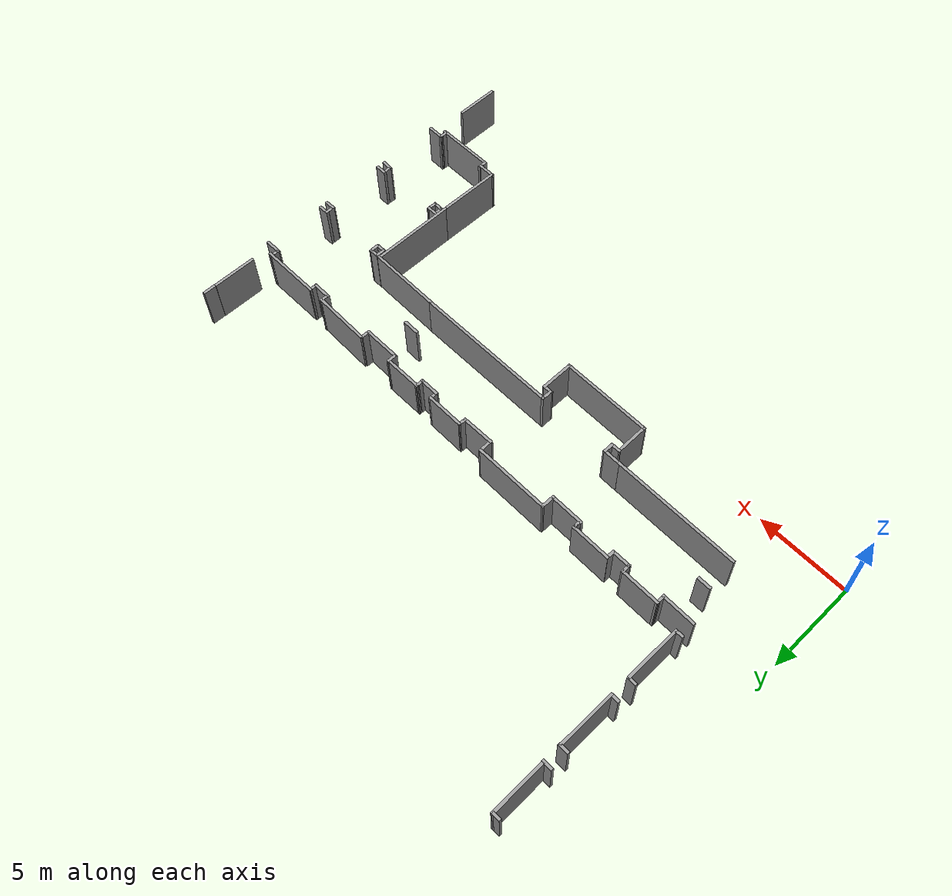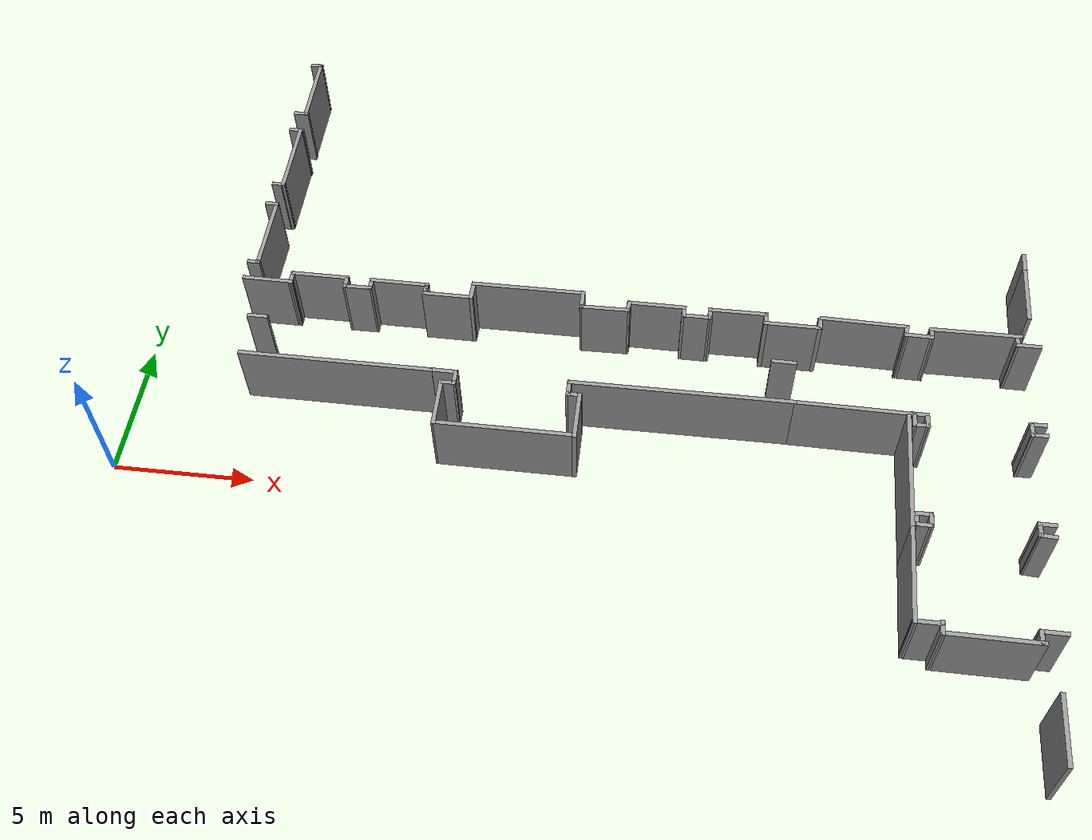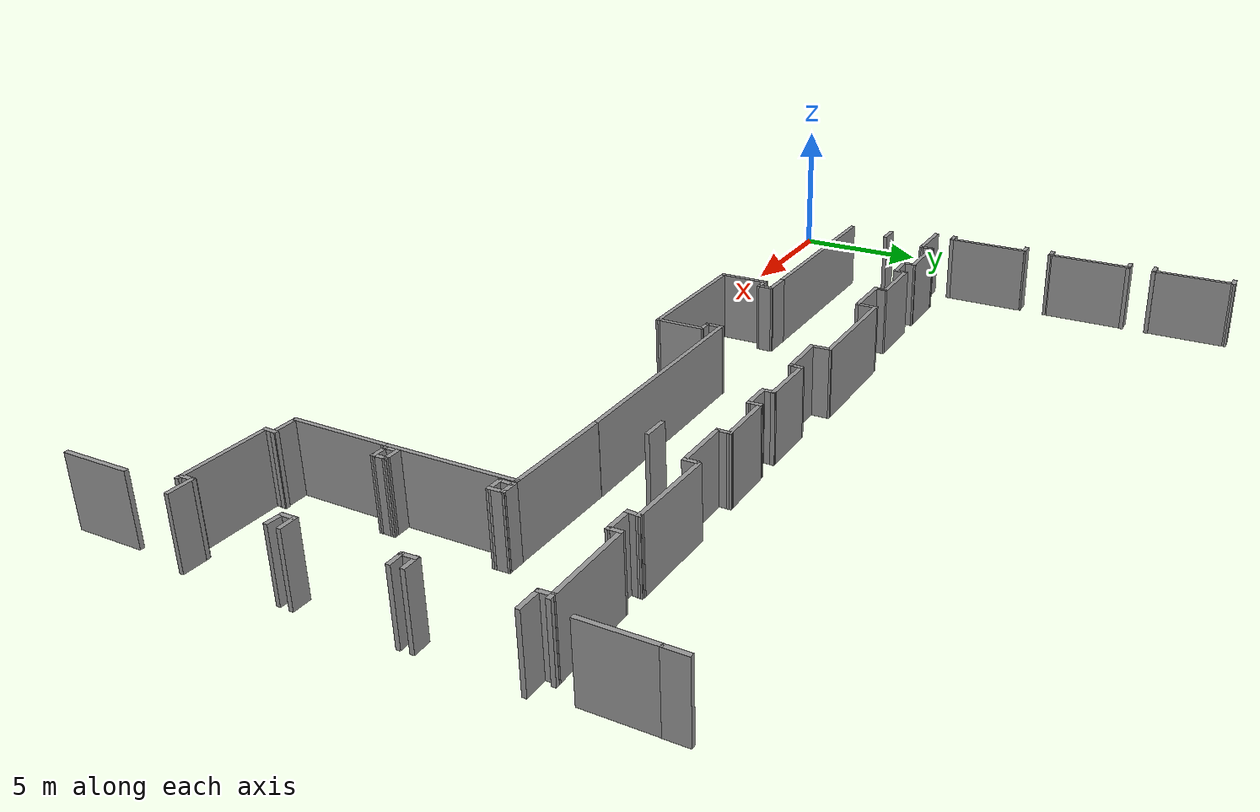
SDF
<sdf version="1.7">
 <model name="TD1-Mapa">
  <pose>-6.249136 -5.50363 0 0 -0 0</pose>
  <link name="Wall_470">
   <collision name="Wall_470_Collision">
    <geometry><box><size>1.855538 0.15 2.5</size></box></geometry>
    <pose>0 0 1.25 0 -0 0</pose>
   </collision>
   <visual name="Wall_470_Visual">
    <pose>0 0 1.25 0 -0 0</pose>
    <geometry><box><size>1.855538 0.15 2.5</size></box></geometry>
    <material>
     <script><uri>file://media/materials/scripts/gazebo.material</uri><name>Gazebo/Grey</name></script>
     <ambient>1 1 1 1</ambient>
    </material>
    <meta><layer>0</layer></meta>
   </visual>
   <pose>10.45343 12.54383 0 0 -0 -0.0081393</pose>
  </link>
  <link name="Wall_471">
   <collision name="Wall_471_Collision">
    <geometry><box><size>0.555431 0.15 2.5</size></box></geometry>
    <pose>0 0 1.25 0 -0 0</pose>
   </collision>
   <visual name="Wall_471_Visual">
    <pose>0 0 1.25 0 -0 0</pose>
    <geometry><box><size>0.555431 0.15 2.5</size></box></geometry>
    <material>
     <script><uri>file://media/materials/scripts/gazebo.material</uri><name>Gazebo/Grey</name></script>
     <ambient>1 1 1 1</ambient>
    </material>
    <meta><layer>0</layer></meta>
   </visual>
   <pose>11.30613 12.73963 0 0 -0 1.57083</pose>
  </link>
  <link name="Wall_472">
   <collision name="Wall_472_Collision">
    <geometry><box><size>2.154231 0.15 2.5</size></box></geometry>
    <pose>0 0 1.25 0 -0 0</pose>
   </collision>
   <visual name="Wall_472_Visual">
    <pose>0 0 1.25 0 -0 0</pose>
    <geometry><box><size>2.154231 0.15 2.5</size></box></geometry>
    <material>
     <script><uri>file://media/materials/scripts/gazebo.material</uri><name>Gazebo/Grey</name></script>
     <ambient>1 1 1 1</ambient>
    </material>
    <meta><layer>0</layer></meta>
   </visual>
   <pose>12.30823 12.94013 0 0 -0 -0.0021343</pose>
  </link>
  <link name="Wall_475">
   <collision name="Wall_475_Collision">
    <geometry><box><size>0.5347333 0.15 2.5</size></box></geometry>
    <pose>0 0 1.25 0 -0 0</pose>
   </collision>
   <visual name="Wall_475_Visual">
    <pose>0 0 1.25 0 -0 0</pose>
    <geometry><box><size>0.5347333 0.15 2.5</size></box></geometry>
    <material>
     <script><uri>file://media/materials/scripts/gazebo.material</uri><name>Gazebo/Grey</name></script>
     <ambient>1 1 1 1</ambient>
    </material>
    <meta><layer>0</layer></meta>
   </visual>
   <pose>13.32023 12.74583 0 0 -0 -1.519731</pose>
  </link>
  <link name="Wall_476">
   <collision name="Wall_476_Collision">
    <geometry><box><size>1.054836 0.15 2.5</size></box></geometry>
    <pose>0 0 1.25 0 -0 0</pose>
   </collision>
   <visual name="Wall_476_Visual">
    <pose>0 0 1.25 0 -0 0</pose>
    <geometry><box><size>1.054836 0.15 2.5</size></box></geometry>
    <material>
     <script><uri>file://media/materials/scripts/gazebo.material</uri><name>Gazebo/Grey</name></script>
     <ambient>1 1 1 1</ambient>
    </material>
    <meta><layer>0</layer></meta>
   </visual>
   <pose>13.78243 12.556 0 0 -0 0.005035</pose>
  </link>
  <link name="Wall_477">
   <collision name="Wall_477_Collision">
    <geometry><box><size>0.5155393 0.15 2.5</size></box></geometry>
    <pose>0 0 1.25 0 -0 0</pose>
   </collision>
   <visual name="Wall_477_Visual">
    <pose>0 0 1.25 0 -0 0</pose>
    <geometry><box><size>0.5155393 0.15 2.5</size></box></geometry>
    <material>
     <script><uri>file://media/materials/scripts/gazebo.material</uri><name>Gazebo/Grey</name></script>
     <ambient>1 1 1 1</ambient>
    </material>
    <meta><layer>0</layer></meta>
   </visual>
   <pose>14.24493 12.74113 0 0 -0 1.57083</pose>
  </link>
  <link name="Wall_479">
   <collision name="Wall_479_Collision">
    <geometry><box><size>2.173731 0.15 2.5</size></box></geometry>
    <pose>0 0 1.25 0 -0 0</pose>
   </collision>
   <visual name="Wall_479_Visual">
    <pose>0 0 1.25 0 -0 0</pose>
    <geometry><box><size>2.173731 0.15 2.5</size></box></geometry>
    <material>
     <script><uri>file://media/materials/scripts/gazebo.material</uri><name>Gazebo/Grey</name></script>
     <ambient>1 1 1 1</ambient>
    </material>
    <meta><layer>0</layer></meta>
   </visual>
   <pose>15.26223 12.93143 0 0 -0 -0.003435</pose>
  </link>
  <link name="Wall_480">
   <collision name="Wall_480_Collision">
    <geometry><box><size>0.43143933 0.15 2.5</size></box></geometry>
    <pose>0 0 1.25 0 -0 0</pose>
   </collision>
   <visual name="Wall_480_Visual">
    <pose>0 0 1.25 0 -0 0</pose>
    <geometry><box><size>0.43143933 0.15 2.5</size></box></geometry>
    <material>
     <script><uri>file://media/materials/scripts/gazebo.material</uri><name>Gazebo/Grey</name></script>
     <ambient>1 1 1 1</ambient>
    </material>
    <meta><layer>0</layer></meta>
   </visual>
   <pose>16.27413 12.78543 0 0 -0 -1.57083</pose>
  </link>
  <link name="Wall_481">
   <collision name="Wall_481_Collision">
    <geometry><box><size>0.43143933 0.15 2.5</size></box></geometry>
    <pose>0 0 1.25 0 -0 0</pose>
   </collision>
   <visual name="Wall_481_Visual">
    <pose>0 0 1.25 0 -0 0</pose>
    <geometry><box><size>0.43143933 0.15 2.5</size></box></geometry>
    <material>
     <script><uri>file://media/materials/scripts/gazebo.material</uri><name>Gazebo/Grey</name></script>
     <ambient>1 1 1 1</ambient>
    </material>
    <meta><layer>0</layer></meta>
   </visual>
   <pose>16.27013 12.78543 0 0 -0 1.57083</pose>
  </link>
  <link name="Wall_483">
   <collision name="Wall_483_Collision">
    <geometry><box><size>1.862737 0.15 2.5</size></box></geometry>
    <pose>0 0 1.25 0 -0 0</pose>
   </collision>
   <visual name="Wall_483_Visual">
    <pose>0 0 1.25 0 -0 0</pose>
    <geometry><box><size>1.862737 0.15 2.5</size></box></geometry>
    <material>
     <script><uri>file://media/materials/scripts/gazebo.material</uri><name>Gazebo/Grey</name></script>
     <ambient>1 1 1 1</ambient>
    </material>
    <meta><layer>0</layer></meta>
   </visual>
   <pose>17.10313 12.53833 0 0 -0 -0.004634</pose>
  </link>
  <link name="Wall_484">
   <collision name="Wall_484_Collision">
    <geometry><box><size>0.797934 0.15 2.5</size></box></geometry>
    <pose>0 0 1.25 0 -0 0</pose>
   </collision>
   <visual name="Wall_484_Visual">
    <pose>0 0 1.25 0 -0 0</pose>
    <geometry><box><size>0.797934 0.15 2.5</size></box></geometry>
    <material>
     <script><uri>file://media/materials/scripts/gazebo.material</uri><name>Gazebo/Grey</name></script>
     <ambient>1 1 1 1</ambient>
    </material>
    <meta><layer>0</layer></meta>
   </visual>
   <pose>17.96143 12.85823 0 0 -0 1.564636</pose>
  </link>
  <link name="Wall_491">
   <collision name="Wall_491_Collision">
    <geometry><box><size>0.4765383 0.15 2.5</size></box></geometry>
    <pose>0 0 1.25 0 -0 0</pose>
   </collision>
   <visual name="Wall_491_Visual">
    <pose>0 0 1.25 0 -0 0</pose>
    <geometry><box><size>0.4765383 0.15 2.5</size></box></geometry>
    <material>
     <script><uri>file://media/materials/scripts/gazebo.material</uri><name>Gazebo/Grey</name></script>
     <ambient>1 1 1 1</ambient>
    </material>
    <meta><layer>0</layer></meta>
   </visual>
   <pose>9.731037 13.32243 0 0 -0 0</pose>
  </link>
  <link name="Wall_492">
   <collision name="Wall_492_Collision">
    <geometry><box><size>3.014736 0.15 2.5</size></box></geometry>
    <pose>0 0 1.25 0 -0 0</pose>
   </collision>
   <visual name="Wall_492_Visual">
    <pose>0 0 1.25 0 -0 0</pose>
    <geometry><box><size>3.014736 0.15 2.5</size></box></geometry>
    <material>
     <script><uri>file://media/materials/scripts/gazebo.material</uri><name>Gazebo/Grey</name></script>
     <ambient>1 1 1 1</ambient>
    </material>
    <meta><layer>0</layer></meta>
   </visual>
   <pose>9.894235 14.75483 0 0 -0 1.57083</pose>
  </link>
  <link name="Wall_522">
   <collision name="Wall_522_Collision">
    <geometry><box><size>0.4742373 0.15 2.5</size></box></geometry>
    <pose>0 0 1.25 0 -0 0</pose>
   </collision>
   <visual name="Wall_522_Visual">
    <pose>0 0 1.25 0 -0 0</pose>
    <geometry><box><size>0.4742373 0.15 2.5</size></box></geometry>
    <material>
     <script><uri>file://media/materials/scripts/gazebo.material</uri><name>Gazebo/Grey</name></script>
     <ambient>1 1 1 1</ambient>
    </material>
    <meta><layer>0</layer></meta>
   </visual>
   <pose>9.704534 24.05873 0 0 -0 0.0159363</pose>
  </link>
  <link name="Wall_524">
   <collision name="Wall_524_Collision">
    <geometry><box><size>2.977235 0.15 2.5</size></box></geometry>
    <pose>0 0 1.25 0 -0 0</pose>
   </collision>
   <visual name="Wall_524_Visual">
    <pose>0 0 1.25 0 -0 0</pose>
    <geometry><box><size>2.977235 0.15 2.5</size></box></geometry>
    <material>
     <script><uri>file://media/materials/scripts/gazebo.material</uri><name>Gazebo/Grey</name></script>
     <ambient>1 1 1 1</ambient>
    </material>
    <meta><layer>0</layer></meta>
   </visual>
   <pose>9.875131 22.64773 0 0 -0 -1.564831</pose>
  </link>
  <link name="Wall_526">
   <collision name="Wall_526_Collision">
    <geometry><box><size>0.5691393 0.15 2.5</size></box></geometry>
    <pose>0 0 1.25 0 -0 0</pose>
   </collision>
   <visual name="Wall_526_Visual">
    <pose>0 0 1.25 0 -0 0</pose>
    <geometry><box><size>0.5691393 0.15 2.5</size></box></geometry>
    <material>
     <script><uri>file://media/materials/scripts/gazebo.material</uri><name>Gazebo/Grey</name></script>
     <ambient>1 1 1 1</ambient>
    </material>
    <meta><layer>0</layer></meta>
   </visual>
   <pose>9.705739 21.20893 0 0 -0 0</pose>
  </link>
  <link name="Wall_529">
   <collision name="Wall_529_Collision">
    <geometry><box><size>0.561231 0.15 2.5</size></box></geometry>
    <pose>0 0 1.25 0 -0 0</pose>
   </collision>
   <visual name="Wall_529_Visual">
    <pose>0 0 1.25 0 -0 0</pose>
    <geometry><box><size>0.561231 0.15 2.5</size></box></geometry>
    <material>
     <script><uri>file://media/materials/scripts/gazebo.material</uri><name>Gazebo/Grey</name></script>
     <ambient>1 1 1 1</ambient>
    </material>
    <meta><layer>0</layer></meta>
   </visual>
   <pose>9.720637 20.27183 0 0 -0 0.0109383</pose>
  </link>
  <link name="Wall_531">
   <collision name="Wall_531_Collision">
    <geometry><box><size>3.118237 0.15 2.5</size></box></geometry>
    <pose>0 0 1.25 0 -0 0</pose>
   </collision>
   <visual name="Wall_531_Visual">
    <pose>0 0 1.25 0 -0 0</pose>
    <geometry><box><size>3.118237 0.15 2.5</size></box></geometry>
    <material>
     <script><uri>file://media/materials/scripts/gazebo.material</uri><name>Gazebo/Grey</name></script>
     <ambient>1 1 1 1</ambient>
    </material>
    <meta><layer>0</layer></meta>
   </visual>
   <pose>9.892332 18.77323 0 0 -0 -1.567237</pose>
  </link>
  <link name="Wall_532">
   <collision name="Wall_532_Collision">
    <geometry><box><size>0.5053353 0.15 2.5</size></box></geometry>
    <pose>0 0 1.25 0 -0 0</pose>
   </collision>
   <visual name="Wall_532_Visual">
    <pose>0 0 1.25 0 -0 0</pose>
    <geometry><box><size>0.5053353 0.15 2.5</size></box></geometry>
    <material>
     <script><uri>file://media/materials/scripts/gazebo.material</uri><name>Gazebo/Grey</name></script>
     <ambient>1 1 1 1</ambient>
    </material>
    <meta><layer>0</layer></meta>
   </visual>
   <pose>9.719837 17.289 0 0 -0 3.141539</pose>
  </link>
  <link name="Wall_534">
   <collision name="Wall_534_Collision">
    <geometry><box><size>0.4949303 0.15 2.5</size></box></geometry>
    <pose>0 0 1.25 0 -0 0</pose>
   </collision>
   <visual name="Wall_534_Visual">
    <pose>0 0 1.25 0 -0 0</pose>
    <geometry><box><size>0.4949303 0.15 2.5</size></box></geometry>
    <material>
     <script><uri>file://media/materials/scripts/gazebo.material</uri><name>Gazebo/Grey</name></script>
     <ambient>1 1 1 1</ambient>
    </material>
    <meta><layer>0</layer></meta>
   </visual>
   <pose>9.70423 16.25433 0 0 -0 0</pose>
  </link>
  <link name="Wall_541">
   <collision name="Wall_541_Collision">
    <geometry><box><size>6.919837 0.15 2.5</size></box></geometry>
    <pose>0 0 1.25 0 -0 0</pose>
   </collision>
   <visual name="Wall_541_Visual">
    <pose>0 0 1.25 0 -0 0</pose>
    <geometry><box><size>6.919837 0.15 2.5</size></box></geometry>
    <material>
     <script><uri>file://media/materials/scripts/gazebo.material</uri><name>Gazebo/Grey</name></script>
     <ambient>1 1 1 1</ambient>
    </material>
    <meta><layer>0</layer></meta>
   </visual>
   <pose>13.67393 9.154835 0 0 -0 -0.0019393</pose>
  </link>
  <link name="Wall_544">
   <collision name="Wall_544_Collision">
    <geometry><box><size>1.013231 0.15 2.5</size></box></geometry>
    <pose>0 0 1.25 0 -0 0</pose>
   </collision>
   <visual name="Wall_544_Visual">
    <pose>0 0 1.25 0 -0 0</pose>
    <geometry><box><size>1.013231 0.15 2.5</size></box></geometry>
    <material>
     <script><uri>file://media/materials/scripts/gazebo.material</uri><name>Gazebo/Grey</name></script>
     <ambient>1 1 1 1</ambient>
    </material>
    <meta><layer>0</layer></meta>
   </visual>
   <pose>17.53593 9.148033 0 0 -0 -0.0119303</pose>
  </link>
  <link name="Wall_545">
   <collision name="Wall_545_Collision">
    <geometry><box><size>0.61243 0.15 2.5</size></box></geometry>
    <pose>0 0 1.25 0 -0 0</pose>
   </collision>
   <visual name="Wall_545_Visual">
    <pose>0 0 1.25 0 -0 0</pose>
    <geometry><box><size>0.61243 0.15 2.5</size></box></geometry>
    <material>
     <script><uri>file://media/materials/scripts/gazebo.material</uri><name>Gazebo/Grey</name></script>
     <ambient>1 1 1 1</ambient>
    </material>
    <meta><layer>0</layer></meta>
   </visual>
   <pose>17.96753 8.911639 0 0 -0 -1.57083</pose>
  </link>
  <link name="Wall_546">
   <collision name="Wall_546_Collision">
    <geometry><box><size>0.5919363 0.15 2.5</size></box></geometry>
    <pose>0 0 1.25 0 -0 0</pose>
   </collision>
   <visual name="Wall_546_Visual">
    <pose>0 0 1.25 0 -0 0</pose>
    <geometry><box><size>0.5919363 0.15 2.5</size></box></geometry>
    <material>
     <script><uri>file://media/materials/scripts/gazebo.material</uri><name>Gazebo/Grey</name></script>
     <ambient>1 1 1 1</ambient>
    </material>
    <meta><layer>0</layer></meta>
   </visual>
   <pose>17.74663 8.675336 0 0 -0 -3.118334</pose>
  </link>
  <link name="Wall_547">
   <collision name="Wall_547_Collision">
    <geometry><box><size>1.835232 0.15 2.5</size></box></geometry>
    <pose>0 0 1.25 0 -0 0</pose>
   </collision>
   <visual name="Wall_547_Visual">
    <pose>0 0 1.25 0 -0 0</pose>
    <geometry><box><size>1.835232 0.15 2.5</size></box></geometry>
    <material>
     <script><uri>file://media/materials/scripts/gazebo.material</uri><name>Gazebo/Grey</name></script>
     <ambient>1 1 1 1</ambient>
    </material>
    <meta><layer>0</layer></meta>
   </visual>
   <pose>17.53593 7.827632 0 0 -0 -1.55863</pose>
  </link>
  <link name="Wall_548">
   <collision name="Wall_548_Collision">
    <geometry><box><size>4.971932 0.15 2.5</size></box></geometry>
    <pose>0 0 1.25 0 -0 0</pose>
   </collision>
   <visual name="Wall_548_Visual">
    <pose>0 0 1.25 0 -0 0</pose>
    <geometry><box><size>4.971932 0.15 2.5</size></box></geometry>
    <material>
     <script><uri>file://media/materials/scripts/gazebo.material</uri><name>Gazebo/Grey</name></script>
     <ambient>1 1 1 1</ambient>
    </material>
    <meta><layer>0</layer></meta>
   </visual>
   <pose>19.95713 6.98123 0 0 -0 -0.0015383</pose>
  </link>
  <link name="Wall_549">
   <collision name="Wall_549_Collision">
    <geometry><box><size>1.824935 0.15 2.5</size></box></geometry>
    <pose>0 0 1.25 0 -0 0</pose>
   </collision>
   <visual name="Wall_549_Visual">
    <pose>0 0 1.25 0 -0 0</pose>
    <geometry><box><size>1.824935 0.15 2.5</size></box></geometry>
    <material>
     <script><uri>file://media/materials/scripts/gazebo.material</uri><name>Gazebo/Grey</name></script>
     <ambient>1 1 1 1</ambient>
    </material>
    <meta><layer>0</layer></meta>
   </visual>
   <pose>22.36293 7.810937 0 0 -0 1.576933</pose>
  </link>
  <link name="Wall_551">
   <collision name="Wall_551_Collision">
    <geometry><box><size>0.553739 0.15 2.5</size></box></geometry>
    <pose>0 0 1.25 0 -0 0</pose>
   </collision>
   <visual name="Wall_551_Visual">
    <pose>0 0 1.25 0 -0 0</pose>
    <geometry><box><size>0.553739 0.15 2.5</size></box></geometry>
    <material>
     <script><uri>file://media/materials/scripts/gazebo.material</uri><name>Gazebo/Grey</name></script>
     <ambient>1 1 1 1</ambient>
    </material>
    <meta><layer>0</layer></meta>
   </visual>
   <pose>22.15593 8.649938 0 0 -0 3.133932</pose>
  </link>
  <link name="Wall_552">
   <collision name="Wall_552_Collision">
    <geometry><box><size>0.6599323 0.15 2.5</size></box></geometry>
    <pose>0 0 1.25 0 -0 0</pose>
   </collision>
   <visual name="Wall_552_Visual">
    <pose>0 0 1.25 0 -0 0</pose>
    <geometry><box><size>0.6599323 0.15 2.5</size></box></geometry>
    <material>
     <script><uri>file://media/materials/scripts/gazebo.material</uri><name>Gazebo/Grey</name></script>
     <ambient>1 1 1 1</ambient>
    </material>
    <meta><layer>0</layer></meta>
   </visual>
   <pose>21.95213 8.906438 0 0 -0 1.578337</pose>
  </link>
  <link name="Wall_554">
   <collision name="Wall_554_Collision">
    <geometry><box><size>7.89283 0.15 2.5</size></box></geometry>
    <pose>0 0 1.25 0 -0 0</pose>
   </collision>
   <visual name="Wall_554_Visual">
    <pose>0 0 1.25 0 -0 0</pose>
    <geometry><box><size>7.89283 0.15 2.5</size></box></geometry>
    <material>
     <script><uri>file://media/materials/scripts/gazebo.material</uri><name>Gazebo/Grey</name></script>
     <ambient>1 1 1 1</ambient>
    </material>
    <meta><layer>0</layer></meta>
   </visual>
   <pose>25.84183 9.169339 0 0 -0 0.0026313</pose>
  </link>
  <link name="Wall_557">
   <collision name="Wall_557_Collision">
    <geometry><box><size>0.9014313 0.15 2.5</size></box></geometry>
    <pose>0 0 1.25 0 -0 0</pose>
   </collision>
   <visual name="Wall_557_Visual">
    <pose>0 0 1.25 0 -0 0</pose>
    <geometry><box><size>0.9014313 0.15 2.5</size></box></geometry>
    <material>
     <script><uri>file://media/materials/scripts/gazebo.material</uri><name>Gazebo/Grey</name></script>
     <ambient>1 1 1 1</ambient>
    </material>
    <meta><layer>0</layer></meta>
   </visual>
   <pose>29.29843 10.86393 0 0 -0 -0.0119303</pose>
  </link>
  <link name="Wall_559">
   <collision name="Wall_559_Collision">
    <geometry><box><size>4.158038 0.15 2.5</size></box></geometry>
    <pose>0 0 1.25 0 -0 0</pose>
   </collision>
   <visual name="Wall_559_Visual">
    <pose>0 0 1.25 0 -0 0</pose>
    <geometry><box><size>4.158038 0.15 2.5</size></box></geometry>
    <material>
     <script><uri>file://media/materials/scripts/gazebo.material</uri><name>Gazebo/Grey</name></script>
     <ambient>1 1 1 1</ambient>
    </material>
    <meta><layer>0</layer></meta>
   </visual>
   <pose>19.96743 13.18233 0 0 -0 0.0001343</pose>
  </link>
  <link name="Wall_560">
   <collision name="Wall_560_Collision">
    <geometry><box><size>0.7844363 0.15 2.5</size></box></geometry>
    <pose>0 0 1.25 0 -0 0</pose>
   </collision>
   <visual name="Wall_560_Visual">
    <pose>0 0 1.25 0 -0 0</pose>
    <geometry><box><size>0.7844363 0.15 2.5</size></box></geometry>
    <material>
     <script><uri>file://media/materials/scripts/gazebo.material</uri><name>Gazebo/Grey</name></script>
     <ambient>1 1 1 1</ambient>
    </material>
    <meta><layer>0</layer></meta>
   </visual>
   <pose>21.98043 12.86543 0 0 -0 -1.542633</pose>
  </link>
  <link name="Wall_561">
   <collision name="Wall_561_Collision">
    <geometry><box><size>1.812334 0.15 2.5</size></box></geometry>
    <pose>0 0 1.25 0 -0 0</pose>
   </collision>
   <visual name="Wall_561_Visual">
    <pose>0 0 1.25 0 -0 0</pose>
    <geometry><box><size>1.812334 0.15 2.5</size></box></geometry>
    <material>
     <script><uri>file://media/materials/scripts/gazebo.material</uri><name>Gazebo/Grey</name></script>
     <ambient>1 1 1 1</ambient>
    </material>
    <meta><layer>0</layer></meta>
   </visual>
   <pose>22.82033 12.56163 0 0 -0 0.0161323</pose>
  </link>
  <link name="Wall_562">
   <collision name="Wall_562_Collision">
    <geometry><box><size>0.4995303 0.15 2.5</size></box></geometry>
    <pose>0 0 1.25 0 -0 0</pose>
   </collision>
   <visual name="Wall_562_Visual">
    <pose>0 0 1.25 0 -0 0</pose>
    <geometry><box><size>0.4995303 0.15 2.5</size></box></geometry>
    <material>
     <script><uri>file://media/materials/scripts/gazebo.material</uri><name>Gazebo/Grey</name></script>
     <ambient>1 1 1 1</ambient>
    </material>
    <meta><layer>0</layer></meta>
   </visual>
   <pose>23.66473 12.74923 0 0 -0 1.494032</pose>
  </link>
  <link name="Wall_563">
   <collision name="Wall_563_Collision">
    <geometry><box><size>2.133635 0.15 2.5</size></box></geometry>
    <pose>0 0 1.25 0 -0 0</pose>
   </collision>
   <visual name="Wall_563_Visual">
    <pose>0 0 1.25 0 -0 0</pose>
    <geometry><box><size>2.133635 0.15 2.5</size></box></geometry>
    <material>
     <script><uri>file://media/materials/scripts/gazebo.material</uri><name>Gazebo/Grey</name></script>
     <ambient>1 1 1 1</ambient>
    </material>
    <meta><layer>0</layer></meta>
   </visual>
   <pose>24.66993 12.919 0 0 -0 -0.0045303</pose>
  </link>
  <link name="Wall_564">
   <collision name="Wall_564_Collision">
    <geometry><box><size>0.5084313 0.15 2.5</size></box></geometry>
    <pose>0 0 1.25 0 -0 0</pose>
   </collision>
   <visual name="Wall_564_Visual">
    <pose>0 0 1.25 0 -0 0</pose>
    <geometry><box><size>0.5084313 0.15 2.5</size></box></geometry>
    <material>
     <script><uri>file://media/materials/scripts/gazebo.material</uri><name>Gazebo/Grey</name></script>
     <ambient>1 1 1 1</ambient>
    </material>
    <meta><layer>0</layer></meta>
   </visual>
   <pose>25.65733 12.73583 0 0 -0 -1.54583</pose>
  </link>
  <link name="Wall_566">
   <collision name="Wall_566_Collision">
    <geometry><box><size>1.108835 0.15 2.5</size></box></geometry>
    <pose>0 0 1.25 0 -0 0</pose>
   </collision>
   <visual name="Wall_566_Visual">
    <pose>0 0 1.25 0 -0 0</pose>
    <geometry><box><size>1.108835 0.15 2.5</size></box></geometry>
    <material>
     <script><uri>file://media/materials/scripts/gazebo.material</uri><name>Gazebo/Grey</name></script>
     <ambient>1 1 1 1</ambient>
    </material>
    <meta><layer>0</layer></meta>
   </visual>
   <pose>26.14123 12.55643 0 0 -0 -0.0015333</pose>
  </link>
  <link name="Wall_569">
   <collision name="Wall_569_Collision">
    <geometry><box><size>0.5144343 0.15 2.5</size></box></geometry>
    <pose>0 0 1.25 0 -0 0</pose>
   </collision>
   <visual name="Wall_569_Visual">
    <pose>0 0 1.25 0 -0 0</pose>
    <geometry><box><size>0.5144343 0.15 2.5</size></box></geometry>
    <material>
     <script><uri>file://media/materials/scripts/gazebo.material</uri><name>Gazebo/Grey</name></script>
     <ambient>1 1 1 1</ambient>
    </material>
    <meta><layer>0</layer></meta>
   </visual>
   <pose>26.61473 12.73783 0 0 -0 1.603034</pose>
  </link>
  <link name="Wall_570">
   <collision name="Wall_570_Collision">
    <geometry><box><size>2.141639 0.15 2.5</size></box></geometry>
    <pose>0 0 1.25 0 -0 0</pose>
   </collision>
   <visual name="Wall_570_Visual">
    <pose>0 0 1.25 0 -0 0</pose>
    <geometry><box><size>2.141639 0.15 2.5</size></box></geometry>
    <material>
     <script><uri>file://media/materials/scripts/gazebo.material</uri><name>Gazebo/Grey</name></script>
     <ambient>1 1 1 1</ambient>
    </material>
    <meta><layer>0</layer></meta>
   </visual>
   <pose>27.60473 12.92583 0 0 -0 0.00593</pose>
  </link>
  <link name="Wall_571">
   <collision name="Wall_571_Collision">
    <geometry><box><size>0.5495303 0.15 2.5</size></box></geometry>
    <pose>0 0 1.25 0 -0 0</pose>
   </collision>
   <visual name="Wall_571_Visual">
    <pose>0 0 1.25 0 -0 0</pose>
    <geometry><box><size>0.5495303 0.15 2.5</size></box></geometry>
    <material>
     <script><uri>file://media/materials/scripts/gazebo.material</uri><name>Gazebo/Grey</name></script>
     <ambient>1 1 1 1</ambient>
    </material>
    <meta><layer>0</layer></meta>
   </visual>
   <pose>28.60053 12.73193 0 0 -0 -1.57083</pose>
  </link>
  <link name="Wall_572">
   <collision name="Wall_572_Collision">
    <geometry><box><size>2.0747303 0.15 2.5</size></box></geometry>
    <pose>0 0 1.25 0 -0 0</pose>
   </collision>
   <visual name="Wall_572_Visual">
    <pose>0 0 1.25 0 -0 0</pose>
    <geometry><box><size>2.0747303 0.15 2.5</size></box></geometry>
    <material>
     <script><uri>file://media/materials/scripts/gazebo.material</uri><name>Gazebo/Grey</name></script>
     <ambient>1 1 1 1</ambient>
    </material>
    <meta><layer>0</layer></meta>
   </visual>
   <pose>29.564 12.53223 0 0 -0 0</pose>
  </link>
  <link name="Wall_573">
   <collision name="Wall_573_Collision">
    <geometry><box><size>0.520133 0.15 2.5</size></box></geometry>
    <pose>0 0 1.25 0 -0 0</pose>
   </collision>
   <visual name="Wall_573_Visual">
    <pose>0 0 1.25 0 -0 0</pose>
    <geometry><box><size>0.520133 0.15 2.5</size></box></geometry>
    <material>
     <script><uri>file://media/materials/scripts/gazebo.material</uri><name>Gazebo/Grey</name></script>
     <ambient>1 1 1 1</ambient>
    </material>
    <meta><layer>0</layer></meta>
   </visual>
   <pose>30.52753 12.71723 0 0 -0 1.57083</pose>
  </link>
  <link name="Wall_575">
   <collision name="Wall_575_Collision">
    <geometry><box><size>3.165332 0.15 2.5</size></box></geometry>
    <pose>0 0 1.25 0 -0 0</pose>
   </collision>
   <visual name="Wall_575_Visual">
    <pose>0 0 1.25 0 -0 0</pose>
    <geometry><box><size>3.165332 0.15 2.5</size></box></geometry>
    <material>
     <script><uri>file://media/materials/scripts/gazebo.material</uri><name>Gazebo/Grey</name></script>
     <ambient>1 1 1 1</ambient>
    </material>
    <meta><layer>0</layer></meta>
   </visual>
   <pose>32.09583 12.95043 0 0 -0 -0.0206313</pose>
  </link>
  <link name="Wall_576">
   <collision name="Wall_576_Collision">
    <geometry><box><size>0.5087353 0.15 2.5</size></box></geometry>
    <pose>0 0 1.25 0 -0 0</pose>
   </collision>
   <visual name="Wall_576_Visual">
    <pose>0 0 1.25 0 -0 0</pose>
    <geometry><box><size>0.5087353 0.15 2.5</size></box></geometry>
    <material>
     <script><uri>file://media/materials/scripts/gazebo.material</uri><name>Gazebo/Grey</name></script>
     <ambient>1 1 1 1</ambient>
    </material>
    <meta><layer>0</layer></meta>
   </visual>
   <pose>33.58763 12.74063 0 0 -0 -1.657533</pose>
  </link>
  <link name="Wall_577">
   <collision name="Wall_577_Collision">
    <geometry><box><size>1.035839 0.15 2.5</size></box></geometry>
    <pose>0 0 1.25 0 -0 0</pose>
   </collision>
   <visual name="Wall_577_Visual">
    <pose>0 0 1.25 0 -0 0</pose>
    <geometry><box><size>1.035839 0.15 2.5</size></box></geometry>
    <material>
     <script><uri>file://media/materials/scripts/gazebo.material</uri><name>Gazebo/Grey</name></script>
     <ambient>1 1 1 1</ambient>
    </material>
    <meta><layer>0</layer></meta>
   </visual>
   <pose>34.03053 12.55413 0 0 -0 -0.0175343</pose>
  </link>
  <link name="Wall_578">
   <collision name="Wall_578_Collision">
    <geometry><box><size>0.5077343 0.15 2.5</size></box></geometry>
    <pose>0 0 1.25 0 -0 0</pose>
   </collision>
   <visual name="Wall_578_Visual">
    <pose>0 0 1.25 0 -0 0</pose>
    <geometry><box><size>0.5077343 0.15 2.5</size></box></geometry>
    <material>
     <script><uri>file://media/materials/scripts/gazebo.material</uri><name>Gazebo/Grey</name></script>
     <ambient>1 1 1 1</ambient>
    </material>
    <meta><layer>0</layer></meta>
   </visual>
   <pose>34.47343 12.725 0 0 -0 1.57083</pose>
  </link>
  <link name="Wall_579">
   <collision name="Wall_579_Collision">
    <geometry><box><size>3.27383 0.15 2.5</size></box></geometry>
    <pose>0 0 1.25 0 -0 0</pose>
   </collision>
   <visual name="Wall_579_Visual">
    <pose>0 0 1.25 0 -0 0</pose>
    <geometry><box><size>3.27383 0.15 2.5</size></box></geometry>
    <material>
     <script><uri>file://media/materials/scripts/gazebo.material</uri><name>Gazebo/Grey</name></script>
     <ambient>1 1 1 1</ambient>
    </material>
    <meta><layer>0</layer></meta>
   </visual>
   <pose>36.03513 12.91153 0 0 -0 0.0049373</pose>
  </link>
  <link name="Wall_581">
   <collision name="Wall_581_Collision">
    <geometry><box><size>4.004334 0.15 2.5</size></box></geometry>
    <pose>0 0 1.25 0 -0 0</pose>
   </collision>
   <visual name="Wall_581_Visual">
    <pose>0 0 1.25 0 -0 0</pose>
    <geometry><box><size>4.004334 0.15 2.5</size></box></geometry>
    <material>
     <script><uri>file://media/materials/scripts/gazebo.material</uri><name>Gazebo/Grey</name></script>
     <ambient>1 1 1 1</ambient>
    </material>
    <meta><layer>0</layer></meta>
   </visual>
   <pose>31.69933 9.151332 0 0 -0 -0.0121393</pose>
  </link>
  <link name="Wall_583">
   <collision name="Wall_583_Collision">
    <geometry><box><size>4.650337 0.15 2.5</size></box></geometry>
    <pose>0 0 1.25 0 -0 0</pose>
   </collision>
   <visual name="Wall_583_Visual">
    <pose>0 0 1.25 0 -0 0</pose>
    <geometry><box><size>4.650337 0.15 2.5</size></box></geometry>
    <material>
     <script><uri>file://media/materials/scripts/gazebo.material</uri><name>Gazebo/Grey</name></script>
     <ambient>1 1 1 1</ambient>
    </material>
    <meta><layer>0</layer></meta>
   </visual>
   <pose>33.60283 6.854137 0 0 -0 -1.565537</pose>
  </link>
  <link name="Wall_585">
   <collision name="Wall_585_Collision">
    <geometry><box><size>3.472236 0.15 2.5</size></box></geometry>
    <pose>0 0 1.25 0 -0 0</pose>
   </collision>
   <visual name="Wall_585_Visual">
    <pose>0 0 1.25 0 -0 0</pose>
    <geometry><box><size>3.472236 0.15 2.5</size></box></geometry>
    <material>
     <script><uri>file://media/materials/scripts/gazebo.material</uri><name>Gazebo/Grey</name></script>
     <ambient>1 1 1 1</ambient>
    </material>
    <meta><layer>0</layer></meta>
   </visual>
   <pose>33.60853 2.942935 0 0 -0 -1.574339</pose>
  </link>
  <link name="Wall_586">
   <collision name="Wall_586_Collision">
    <geometry><box><size>1.007738 0.15 2.5</size></box></geometry>
    <pose>0 0 1.25 0 -0 0</pose>
   </collision>
   <visual name="Wall_586_Visual">
    <pose>0 0 1.25 0 -0 0</pose>
    <geometry><box><size>1.007738 0.15 2.5</size></box></geometry>
    <material>
     <script><uri>file://media/materials/scripts/gazebo.material</uri><name>Gazebo/Grey</name></script>
     <ambient>1 1 1 1</ambient>
    </material>
    <meta><layer>0</layer></meta>
   </visual>
   <pose>34.03153 1.281839 0 0 -0 0</pose>
  </link>
  <link name="Wall_588">
   <collision name="Wall_588_Collision">
    <geometry><box><size>0.5084323 0.15 2.5</size></box></geometry>
    <pose>0 0 1.25 0 -0 0</pose>
   </collision>
   <visual name="Wall_588_Visual">
    <pose>0 0 1.25 0 -0 0</pose>
    <geometry><box><size>0.5084323 0.15 2.5</size></box></geometry>
    <material>
     <script><uri>file://media/materials/scripts/gazebo.material</uri><name>Gazebo/Grey</name></script>
     <ambient>1 1 1 1</ambient>
    </material>
    <meta><layer>0</layer></meta>
   </visual>
   <pose>34.45533 1.145236 0 0 -0 -1.587139</pose>
  </link>
  <link name="Wall_589">
   <collision name="Wall_589_Collision">
    <geometry><box><size>3.257934 0.15 2.5</size></box></geometry>
    <pose>0 0 1.25 0 -0 0</pose>
   </collision>
   <visual name="Wall_589_Visual">
    <pose>0 0 1.25 0 -0 0</pose>
    <geometry><box><size>3.257934 0.15 2.5</size></box></geometry>
    <material>
     <script><uri>file://media/materials/scripts/gazebo.material</uri><name>Gazebo/Grey</name></script>
     <ambient>1 1 1 1</ambient>
    </material>
    <meta><layer>0</layer></meta>
   </visual>
   <pose>36.01223 0.9601393 0 0 -0 -0.0037383</pose>
  </link>
  <link name="Wall_591">
   <collision name="Wall_591_Collision">
    <geometry><box><size>0.5150313 0.15 2.5</size></box></geometry>
    <pose>0 0 1.25 0 -0 0</pose>
   </collision>
   <visual name="Wall_591_Visual">
    <pose>0 0 1.25 0 -0 0</pose>
    <geometry><box><size>0.5150313 0.15 2.5</size></box></geometry>
    <material>
     <script><uri>file://media/materials/scripts/gazebo.material</uri><name>Gazebo/Grey</name></script>
     <ambient>1 1 1 1</ambient>
    </material>
    <meta><layer>0</layer></meta>
   </visual>
   <pose>37.46633 1.17173 0 0 -0 1.57083</pose>
  </link>
  <link name="Wall_592">
   <collision name="Wall_592_Collision">
    <geometry><box><size>0.9372383 0.15 2.5</size></box></geometry>
    <pose>0 0 1.25 0 -0 0</pose>
   </collision>
   <visual name="Wall_592_Visual">
    <pose>0 0 1.25 0 -0 0</pose>
    <geometry><box><size>0.9372383 0.15 2.5</size></box></geometry>
    <material>
     <script><uri>file://media/materials/scripts/gazebo.material</uri><name>Gazebo/Grey</name></script>
     <ambient>1 1 1 1</ambient>
    </material>
    <meta><layer>0</layer></meta>
   </visual>
   <pose>37.85993 1.350839 0 0 -0 -0.0074363</pose>
  </link>
  <link name="Wall_597">
   <collision name="Wall_597_Collision">
    <geometry><box><size>0.5397333 0.15 2.5</size></box></geometry>
    <pose>0 0 1.25 0 -0 0</pose>
   </collision>
   <visual name="Wall_597_Visual">
    <pose>0 0 1.25 0 -0 0</pose>
    <geometry><box><size>0.5397333 0.15 2.5</size></box></geometry>
    <material>
     <script><uri>file://media/materials/scripts/gazebo.material</uri><name>Gazebo/Grey</name></script>
     <ambient>1 1 1 1</ambient>
    </material>
    <meta><layer>0</layer></meta>
   </visual>
   <pose>37.48253 12.72373 0 0 -0 -1.530832</pose>
  </link>
  <link name="Wall_598">
   <collision name="Wall_598_Collision">
    <geometry><box><size>0.8960363 0.15 2.5</size></box></geometry>
    <pose>0 0 1.25 0 -0 0</pose>
   </collision>
   <visual name="Wall_598_Visual">
    <pose>0 0 1.25 0 -0 0</pose>
    <geometry><box><size>0.8960363 0.15 2.5</size></box></geometry>
    <material>
     <script><uri>file://media/materials/scripts/gazebo.material</uri><name>Gazebo/Grey</name></script>
     <ambient>1 1 1 1</ambient>
    </material>
    <meta><layer>0</layer></meta>
   </visual>
   <pose>37.86333 12.52943 0 0 -0 0</pose>
  </link>
  <link name="Wall_601">
   <collision name="Wall_601_Collision">
    <geometry><box><size>2.38773 0.15 2.5</size></box></geometry>
    <pose>0 0 1.25 0 -0 0</pose>
   </collision>
   <visual name="Wall_601_Visual">
    <pose>0 0 1.25 0 -0 0</pose>
    <geometry><box><size>2.38773 0.15 2.5</size></box></geometry>
    <material>
     <script><uri>file://media/materials/scripts/gazebo.material</uri><name>Gazebo/Grey</name></script>
     <ambient>1 1 1 1</ambient>
    </material>
    <meta><layer>0</layer></meta>
   </visual>
   <pose>37.95653 14.95363 0 0 -0 1.57083</pose>
  </link>
  <link name="Wall_603">
   <collision name="Wall_603_Collision">
    <geometry><box><size>0.7808383 0.15 2.5</size></box></geometry>
    <pose>0 0 1.25 0 -0 0</pose>
   </collision>
   <visual name="Wall_603_Visual">
    <pose>0 0 1.25 0 -0 0</pose>
    <geometry><box><size>0.7808383 0.15 2.5</size></box></geometry>
    <material>
     <script><uri>file://media/materials/scripts/gazebo.material</uri><name>Gazebo/Grey</name></script>
     <ambient>1 1 1 1</ambient>
    </material>
    <meta><layer>0</layer></meta>
   </visual>
   <pose>37.96453 16.45723 0 0 -0 1.57083</pose>
  </link>
  <link name="Wall_650">
   <collision name="Wall_650_Collision">
    <geometry><box><size>2.371237 0.15 2.5</size></box></geometry>
    <pose>0 0 1.25 0 -0 0</pose>
   </collision>
   <visual name="Wall_650_Visual">
    <pose>0 0 1.25 0 -0 0</pose>
    <geometry><box><size>2.371237 0.15 2.5</size></box></geometry>
    <material>
     <script><uri>file://media/materials/scripts/gazebo.material</uri><name>Gazebo/Grey</name></script>
     <ambient>1 1 1 1</ambient>
    </material>
    <meta><layer>0</layer></meta>
   </visual>
   <pose>37.94873 -1.791533 0 0 -0 -1.56283</pose>
  </link>
  <link name="Wall_756">
   <collision name="Wall_756_Collision">
    <geometry><box><size>0.6033313 0.15 2.5</size></box></geometry>
    <pose>0 0 1.25 0 -0 0</pose>
   </collision>
   <visual name="Wall_756_Visual">
    <pose>0 0 1.25 0 -0 0</pose>
    <geometry><box><size>0.6033313 0.15 2.5</size></box></geometry>
    <material>
     <script><uri>file://media/materials/scripts/gazebo.material</uri><name>Gazebo/Grey</name></script>
     <ambient>1 1 1 1</ambient>
    </material>
    <meta><layer>0</layer></meta>
   </visual>
   <pose>37.93463 9.139231 0 0 -0 0.0249393</pose>
  </link>
  <link name="Wall_758">
   <collision name="Wall_758_Collision">
    <geometry><box><size>0.5978333 0.15 2.5</size></box></geometry>
    <pose>0 0 1.25 0 -0 0</pose>
   </collision>
   <visual name="Wall_758_Visual">
    <pose>0 0 1.25 0 -0 0</pose>
    <geometry><box><size>0.5978333 0.15 2.5</size></box></geometry>
    <material>
     <script><uri>file://media/materials/scripts/gazebo.material</uri><name>Gazebo/Grey</name></script>
     <ambient>1 1 1 1</ambient>
    </material>
    <meta><layer>0</layer></meta>
   </visual>
   <pose>37.95443 8.711533 0 0 -0 -3.103634</pose>
  </link>
  <link name="Wall_759">
   <collision name="Wall_759_Collision">
    <geometry><box><size>0.563837 0.15 2.5</size></box></geometry>
    <pose>0 0 1.25 0 -0 0</pose>
   </collision>
   <visual name="Wall_759_Visual">
    <pose>0 0 1.25 0 -0 0</pose>
    <geometry><box><size>0.563837 0.15 2.5</size></box></geometry>
    <material>
     <script><uri>file://media/materials/scripts/gazebo.material</uri><name>Gazebo/Grey</name></script>
     <ambient>1 1 1 1</ambient>
    </material>
    <meta><layer>0</layer></meta>
   </visual>
   <pose>37.72213 8.909739 0 0 -0 1.611837</pose>
  </link>
  <link name="Wall_761">
   <collision name="Wall_761_Collision">
    <geometry><box><size>0.5863323 0.15 2.5</size></box></geometry>
    <pose>0 0 1.25 0 -0 0</pose>
   </collision>
   <visual name="Wall_761_Visual">
    <pose>0 0 1.25 0 -0 0</pose>
    <geometry><box><size>0.5863323 0.15 2.5</size></box></geometry>
    <material>
     <script><uri>file://media/materials/scripts/gazebo.material</uri><name>Gazebo/Grey</name></script>
     <ambient>1 1 1 1</ambient>
    </material>
    <meta><layer>0</layer></meta>
   </visual>
   <pose>33.99483 9.136338 0 0 -0 -0.0129383</pose>
  </link>
  <link name="Wall_762">
   <collision name="Wall_762_Collision">
    <geometry><box><size>0.580835 0.15 2.5</size></box></geometry>
    <pose>0 0 1.25 0 -0 0</pose>
   </collision>
   <visual name="Wall_762_Visual">
    <pose>0 0 1.25 0 -0 0</pose>
    <geometry><box><size>0.580835 0.15 2.5</size></box></geometry>
    <material>
     <script><uri>file://media/materials/scripts/gazebo.material</uri><name>Gazebo/Grey</name></script>
     <ambient>1 1 1 1</ambient>
    </material>
    <meta><layer>0</layer></meta>
   </visual>
   <pose>34.22143 8.918239 0 0 -0 -1.531334</pose>
  </link>
  <link name="Wall_763">
   <collision name="Wall_763_Collision">
    <geometry><box><size>0.6032303 0.15 2.5</size></box></geometry>
    <pose>0 0 1.25 0 -0 0</pose>
   </collision>
   <visual name="Wall_763_Visual">
    <pose>0 0 1.25 0 -0 0</pose>
    <geometry><box><size>0.6032303 0.15 2.5</size></box></geometry>
    <material>
     <script><uri>file://media/materials/scripts/gazebo.material</uri><name>Gazebo/Grey</name></script>
     <ambient>1 1 1 1</ambient>
    </material>
    <meta><layer>0</layer></meta>
   </visual>
   <pose>34.00333 8.70023 0 0 -0 -3.129039</pose>
  </link>
  <link name="Wall_764">
   <collision name="Wall_764_Collision">
    <geometry><box><size>0.5352333 0.15 2.5</size></box></geometry>
    <pose>0 0 1.25 0 -0 0</pose>
   </collision>
   <visual name="Wall_764_Visual">
    <pose>0 0 1.25 0 -0 0</pose>
    <geometry><box><size>0.5352333 0.15 2.5</size></box></geometry>
    <material>
     <script><uri>file://media/materials/scripts/gazebo.material</uri><name>Gazebo/Grey</name></script>
     <ambient>1 1 1 1</ambient>
    </material>
    <meta><layer>0</layer></meta>
   </visual>
   <pose>33.77953 8.889936 0 0 -0 1.556039</pose>
  </link>
  <link name="Wall_766">
   <collision name="Wall_766_Collision">
    <geometry><box><size>0.6088373 0.15 2.5</size></box></geometry>
    <pose>0 0 1.25 0 -0 0</pose>
   </collision>
   <visual name="Wall_766_Visual">
    <pose>0 0 1.25 0 -0 0</pose>
    <geometry><box><size>0.6088373 0.15 2.5</size></box></geometry>
    <material>
     <script><uri>file://media/materials/scripts/gazebo.material</uri><name>Gazebo/Grey</name></script>
     <ambient>1 1 1 1</ambient>
    </material>
    <meta><layer>0</layer></meta>
   </visual>
   <pose>33.99483 5.182434 0 0 -0 0.0123343</pose>
  </link>
  <link name="Wall_767">
   <collision name="Wall_767_Collision">
    <geometry><box><size>0.5692323 0.15 2.5</size></box></geometry>
    <pose>0 0 1.25 0 -0 0</pose>
   </collision>
   <visual name="Wall_767_Visual">
    <pose>0 0 1.25 0 -0 0</pose>
    <geometry><box><size>0.5692323 0.15 2.5</size></box></geometry>
    <material>
     <script><uri>file://media/materials/scripts/gazebo.material</uri><name>Gazebo/Grey</name></script>
     <ambient>1 1 1 1</ambient>
    </material>
    <meta><layer>0</layer></meta>
   </visual>
   <pose>34.22143 4.975637 0 0 -0 -1.584331</pose>
  </link>
  <link name="Wall_768">
   <collision name="Wall_768_Collision">
    <geometry><box><size>0.6146343 0.15 2.5</size></box></geometry>
    <pose>0 0 1.25 0 -0 0</pose>
   </collision>
   <visual name="Wall_768_Visual">
    <pose>0 0 1.25 0 -0 0</pose>
    <geometry><box><size>0.6146343 0.15 2.5</size></box></geometry>
    <material>
     <script><uri>file://media/materials/scripts/gazebo.material</uri><name>Gazebo/Grey</name></script>
     <ambient>1 1 1 1</ambient>
    </material>
    <meta><layer>0</layer></meta>
   </visual>
   <pose>33.98633 4.771735 0 0 -0 3.117231</pose>
  </link>
  <link name="Wall_769">
   <collision name="Wall_769_Collision">
    <geometry><box><size>0.4676373 0.15 2.5</size></box></geometry>
    <pose>0 0 1.25 0 -0 0</pose>
   </collision>
   <visual name="Wall_769_Visual">
    <pose>0 0 1.25 0 -0 0</pose>
    <geometry><box><size>0.4676373 0.15 2.5</size></box></geometry>
    <material>
     <script><uri>file://media/materials/scripts/gazebo.material</uri><name>Gazebo/Grey</name></script>
     <ambient>1 1 1 1</ambient>
    </material>
    <meta><layer>0</layer></meta>
   </visual>
   <pose>33.75123 4.936032 0 0 -0 1.624332</pose>
  </link>
  <link name="Wall_771">
   <collision name="Wall_771_Collision">
    <geometry><box><size>0.6327363 0.15 2.5</size></box></geometry>
    <pose>0 0 1.25 0 -0 0</pose>
   </collision>
   <visual name="Wall_771_Visual">
    <pose>0 0 1.25 0 -0 0</pose>
    <geometry><box><size>0.6327363 0.15 2.5</size></box></geometry>
    <material>
     <script><uri>file://media/materials/scripts/gazebo.material</uri><name>Gazebo/Grey</name></script>
     <ambient>1 1 1 1</ambient>
    </material>
    <meta><layer>0</layer></meta>
   </visual>
   <pose>37.938 5.211437 0 0 -0 0</pose>
  </link>
  <link name="Wall_773">
   <collision name="Wall_773_Collision">
    <geometry><box><size>0.6197353 0.15 2.5</size></box></geometry>
    <pose>0 0 1.25 0 -0 0</pose>
   </collision>
   <visual name="Wall_773_Visual">
    <pose>0 0 1.25 0 -0 0</pose>
    <geometry><box><size>0.6197353 0.15 2.5</size></box></geometry>
    <material>
     <script><uri>file://media/materials/scripts/gazebo.material</uri><name>Gazebo/Grey</name></script>
     <ambient>1 1 1 1</ambient>
    </material>
    <meta><layer>0</layer></meta>
   </visual>
   <pose>37.938 4.784738 0 0 -0 3.0742323</pose>
  </link>
  <link name="Wall_774">
   <collision name="Wall_774_Collision">
    <geometry><box><size>0.5213313 0.15 2.5</size></box></geometry>
    <pose>0 0 1.25 0 -0 0</pose>
   </collision>
   <visual name="Wall_774_Visual">
    <pose>0 0 1.25 0 -0 0</pose>
    <geometry><box><size>0.5213313 0.15 2.5</size></box></geometry>
    <material>
     <script><uri>file://media/materials/scripts/gazebo.material</uri><name>Gazebo/Grey</name></script>
     <ambient>1 1 1 1</ambient>
    </material>
    <meta><layer>0</layer></meta>
   </visual>
   <pose>37.70353 4.986733 0 0 -0 1.57083</pose>
  </link>
  <link name="Wall_812">
   <collision name="Wall_812_Collision">
    <geometry><box><size>0.75 0.15 2.5</size></box></geometry>
    <pose>0 0 1.25 0 -0 0</pose>
   </collision>
   <visual name="Wall_812_Visual">
    <pose>0 0 1.25 0 -0 0</pose>
    <geometry><box><size>0.75 0.15 2.5</size></box></geometry>
    <material>
     <script><uri>file://media/materials/scripts/gazebo.material</uri><name>Gazebo/Grey</name></script>
     <ambient>1 1 1 1</ambient>
    </material>
    <meta><layer>0</layer></meta>
   </visual>
   <pose>10.49943 10.83233 0 0 -0 0</pose>
  </link>
  <static>1</static>
 </model>
</sdf>
